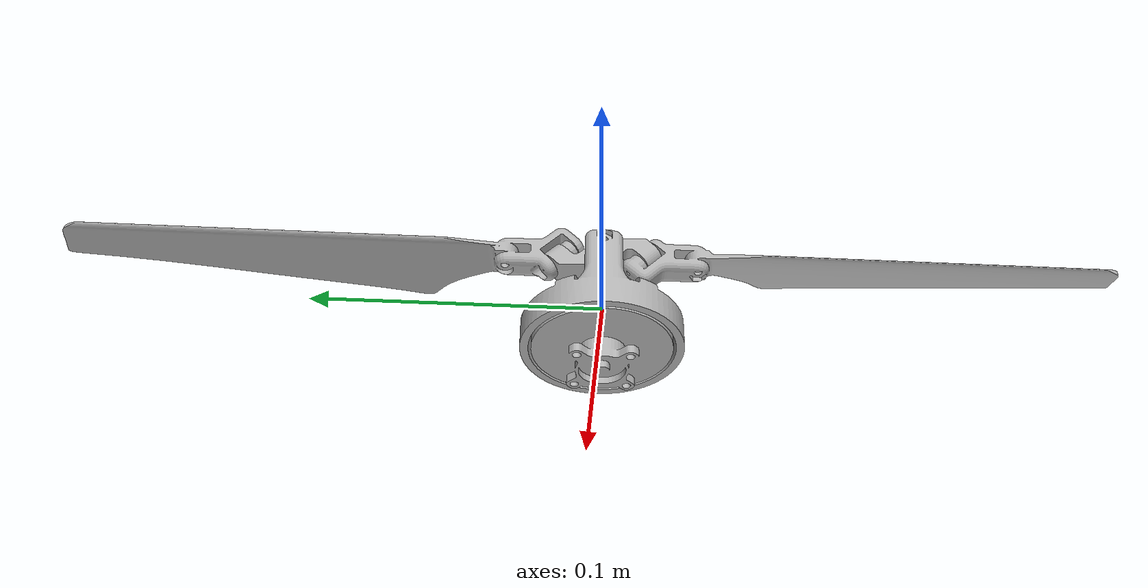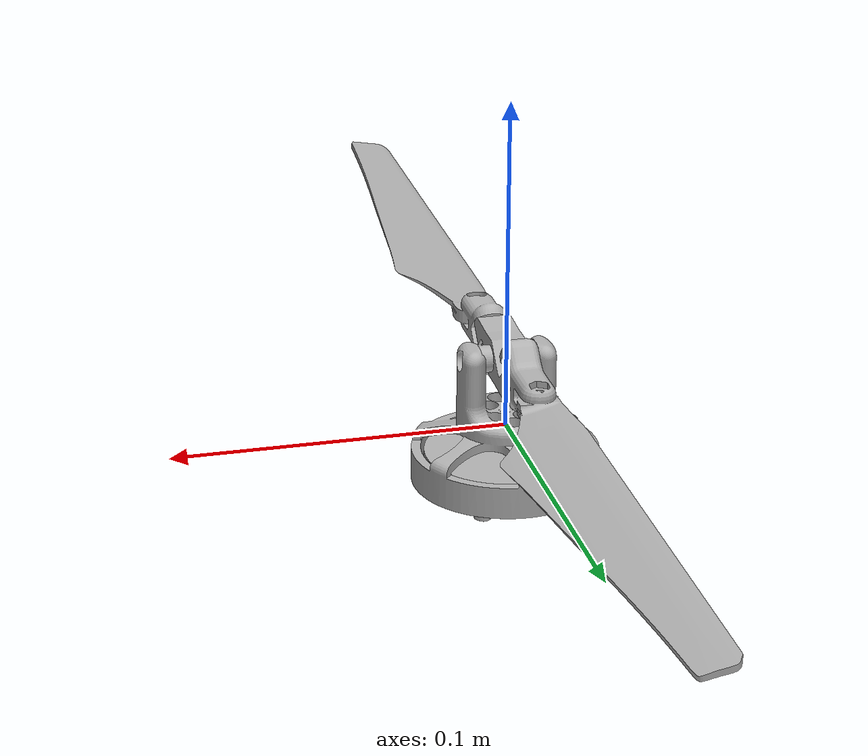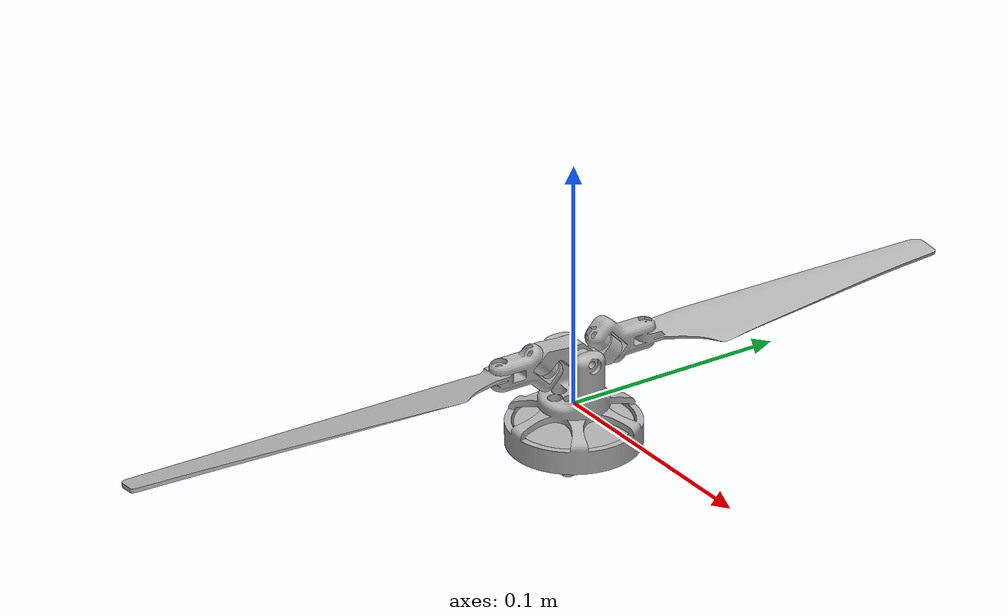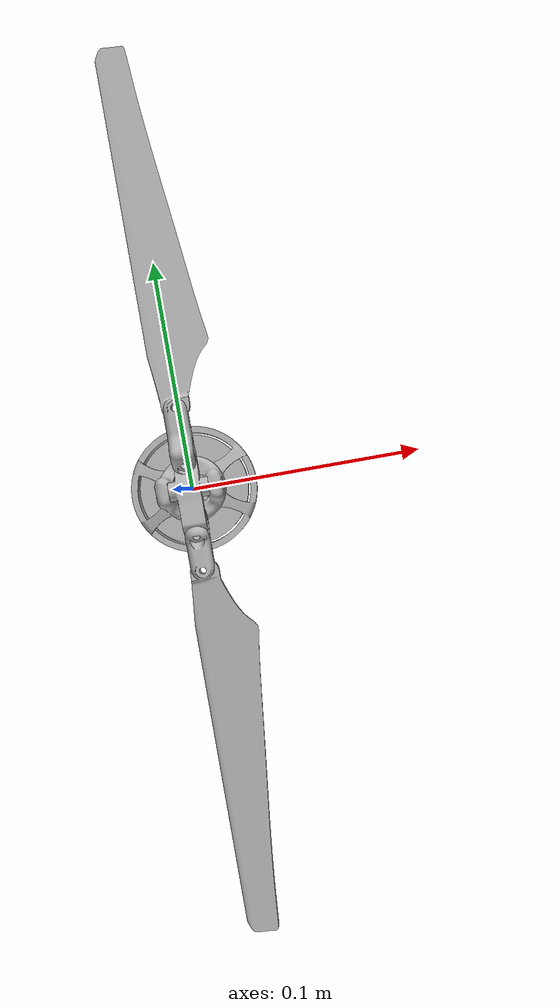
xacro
<?xml version="1.0" ?>
<robot name="RotorAssemblyFullURDF" xmlns:xacro="http://www.ros.org/wiki/xacro">

<xacro:include filename="$(find RotorAssemblyFullURDF_description)/urdf/materials.xacro" />
<xacro:include filename="$(find RotorAssemblyFullURDF_description)/urdf/RotorAssemblyFullURDF.trans" />
<xacro:include filename="$(find RotorAssemblyFullURDF_description)/urdf/RotorAssemblyFullURDF.gazebo" />
<link name="base_link">
  <inertial>
    <origin xyz="7.738042425137721e-14 1.7881392864610074e-10 -0.013027047773476477" rpy="0 0 0"/>
    <mass value="0.04838658295139719"/>
    <inertia ixx="7e-06" iyy="7e-06" izz="1.3e-05" ixy="0.0" iyz="0.0" ixz="0.0"/>
  </inertial>
  <visual>
    <origin xyz="0 0 0" rpy="0 0 0"/>
    <geometry>
      <mesh filename="package://RotorAssemblyFullURDF_description/meshes/base_link.stl" scale="0.001 0.001 0.001"/>
    </geometry>
    <material name="silver"/>
  </visual>
  <collision>
    <origin xyz="0 0 0" rpy="0 0 0"/>
    <geometry>
      <mesh filename="package://RotorAssemblyFullURDF_description/meshes/base_link.stl" scale="0.001 0.001 0.001"/>
    </geometry>
  </collision>
</link>

<link name="hub_1">
  <inertial>
    <origin xyz="5.134385663919432e-06 5.324199036162284e-08 0.02045097842795695" rpy="0 0 0"/>
    <mass value="0.025233763410004266"/>
    <inertia ixx="7e-06" iyy="8e-06" izz="1.1e-05" ixy="-0.0" iyz="0.0" ixz="-0.0"/>
  </inertial>
  <visual>
    <origin xyz="0.0 -0.0 0.025" rpy="0 0 0"/>
    <geometry>
      <mesh filename="package://RotorAssemblyFullURDF_description/meshes/hub_1.stl" scale="0.001 0.001 0.001"/>
    </geometry>
    <material name="silver"/>
  </visual>
  <collision>
    <origin xyz="0.0 -0.0 0.025" rpy="0 0 0"/>
    <geometry>
      <mesh filename="package://RotorAssemblyFullURDF_description/meshes/hub_1.stl" scale="0.001 0.001 0.001"/>
    </geometry>
  </collision>
</link>

<link name="Teetering_Hub_1">
  <inertial>
    <origin xyz="-3.5419443219343136e-14 1.7881397990284334e-10 -9.317626531446521e-11" rpy="0 0 0"/>
    <mass value="0.00336023778370724"/>
    <inertia ixx="0.0" iyy="0.0" izz="0.0" ixy="0.0" iyz="0.0" ixz="0.0"/>
  </inertial>
  <visual>
    <origin xyz="-0.0 -0.0 -0.022" rpy="0 0 0"/>
    <geometry>
      <mesh filename="package://RotorAssemblyFullURDF_description/meshes/Teetering_Hub_1.stl" scale="0.001 0.001 0.001"/>
    </geometry>
    <material name="silver"/>
  </visual>
  <collision>
    <origin xyz="-0.0 -0.0 -0.022" rpy="0 0 0"/>
    <geometry>
      <mesh filename="package://RotorAssemblyFullURDF_description/meshes/Teetering_Hub_1.stl" scale="0.001 0.001 0.001"/>
    </geometry>
  </collision>
</link>

<link name="SideHubNegative_1">
  <inertial>
    <origin xyz="0.0008257992232984365 0.06000080025347367 0.0013887971279314439" rpy="0 0 0"/>
    <mass value="0.007461147444443305"/>
    <inertia ixx="2.1e-05" iyy="0.0" izz="2.1e-05" ixy="-0.0" iyz="0.0" ixz="0.0"/>
  </inertial>
  <visual>
    <origin xyz="-0.0 -0.016061 -0.020939" rpy="0 0 0"/>
    <geometry>
      <mesh filename="package://RotorAssemblyFullURDF_description/meshes/SideHubNegative_1.stl" scale="0.001 0.001 0.001"/>
    </geometry>
    <material name="silver"/>
  </visual>
  <collision>
    <origin xyz="-0.0 -0.016061 -0.020939" rpy="0 0 0"/>
    <geometry>
      <mesh filename="package://RotorAssemblyFullURDF_description/meshes/SideHubNegative_1.stl" scale="0.001 0.001 0.001"/>
    </geometry>
  </collision>
</link>

<link name="SideHubPositive_1">
  <inertial>
    <origin xyz="0.0008257992221561715 -0.06000079987073235 -0.001388797312438756" rpy="0 0 0"/>
    <mass value="0.0074611474493650465"/>
    <inertia ixx="2.1e-05" iyy="0.0" izz="2.1e-05" ixy="0.0" iyz="0.0" ixz="-0.0"/>
  </inertial>
  <visual>
    <origin xyz="-0.0 0.016061 -0.023061" rpy="0 0 0"/>
    <geometry>
      <mesh filename="package://RotorAssemblyFullURDF_description/meshes/SideHubPositive_1.stl" scale="0.001 0.001 0.001"/>
    </geometry>
    <material name="silver"/>
  </visual>
  <collision>
    <origin xyz="-0.0 0.016061 -0.023061" rpy="0 0 0"/>
    <geometry>
      <mesh filename="package://RotorAssemblyFullURDF_description/meshes/SideHubPositive_1.stl" scale="0.001 0.001 0.001"/>
    </geometry>
  </collision>
</link>

<joint name="Revolute 7" type="continuous">
  <origin xyz="0.0 0.0 -0.025" rpy="0 0 0"/>
  <parent link="base_link"/>
  <child link="hub_1"/>
  <axis xyz="-0.0 -0.0 -1.0"/>
</joint>

<joint name="Revolute 8" type="continuous">
  <origin xyz="0.0 0.0 0.047" rpy="0 0 0"/>
  <parent link="hub_1"/>
  <child link="Teetering_Hub_1"/>
  <axis xyz="1.0 -0.0 -0.0"/>
</joint>

<joint name="Revolute 9" type="continuous">
  <origin xyz="0.0 0.016061 -0.001061" rpy="0 0 0"/>
  <parent link="Teetering_Hub_1"/>
  <child link="SideHubNegative_1"/>
  <axis xyz="-0.0 0.707107 -0.707107"/>
</joint>

<joint name="Revolute 10" type="continuous">
  <origin xyz="0.0 -0.016061 0.001061" rpy="0 0 0"/>
  <parent link="Teetering_Hub_1"/>
  <child link="SideHubPositive_1"/>
  <axis xyz="-0.0 0.707107 -0.707107"/>
</joint>

</robot>

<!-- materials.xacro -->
<robot name="RotorAssemblyFullURDF" xmlns:xacro="http://www.ros.org/wiki/xacro" >

<material name="silver">
  <color rgba="0.700 0.700 0.700 1.000"/>
</material>

 <material name="blue">
    <color rgba="0.0 0.0 0.8 1.0"/>
</material>
</robot>

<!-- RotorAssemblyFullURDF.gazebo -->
<robot name="RotorAssemblyFullURDF" xmlns:xacro="http://www.ros.org/wiki/xacro" >

<xacro:property name="body_color" value="Gazebo/Silver" />

<gazebo>
  <plugin name="control" filename="libgazebo_ros_control.so"/>
</gazebo>
<gazebo reference="base_link">
  <material>${body_color}</material>
  <mu1>0.2</mu1>
  <mu2>0.2</mu2>
  <selfCollide>true</selfCollide>
  <gravity>true</gravity>
</gazebo>

<gazebo reference="hub_1">
  <material>${body_color}</material>
  <mu1>0.2</mu1>
  <mu2>0.2</mu2>
  <selfCollide>true</selfCollide>
</gazebo>

<gazebo reference="Teetering_Hub_1">
  <material>${body_color}</material>
  <mu1>0.2</mu1>
  <mu2>0.2</mu2>
  <selfCollide>true</selfCollide>
</gazebo>

<gazebo reference="SideHubNegative_1">
  <material>${body_color}</material>
  <mu1>0.2</mu1>
  <mu2>0.2</mu2>
  <selfCollide>true</selfCollide>
</gazebo>

<gazebo reference="SideHubPositive_1">
  <material>${body_color}</material>
  <mu1>0.2</mu1>
  <mu2>0.2</mu2>
  <selfCollide>true</selfCollide>
</gazebo>

</robot>
